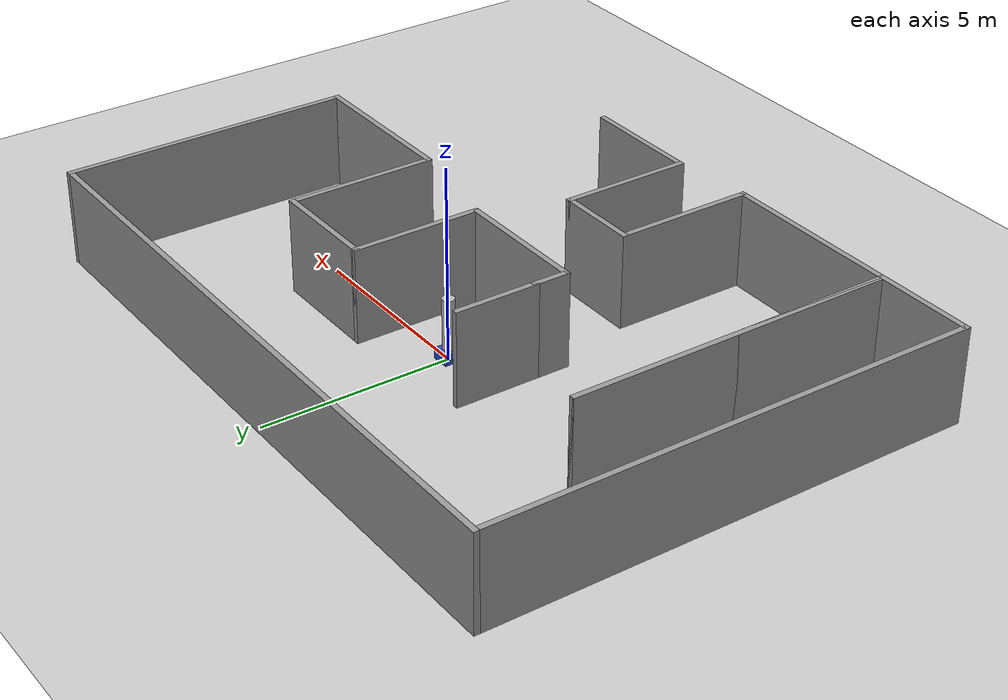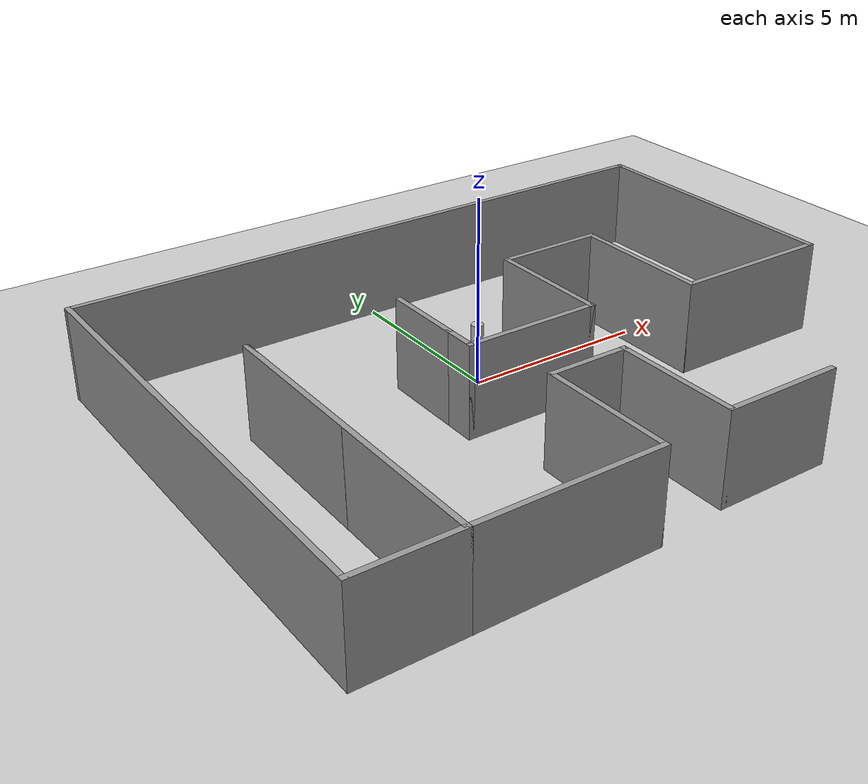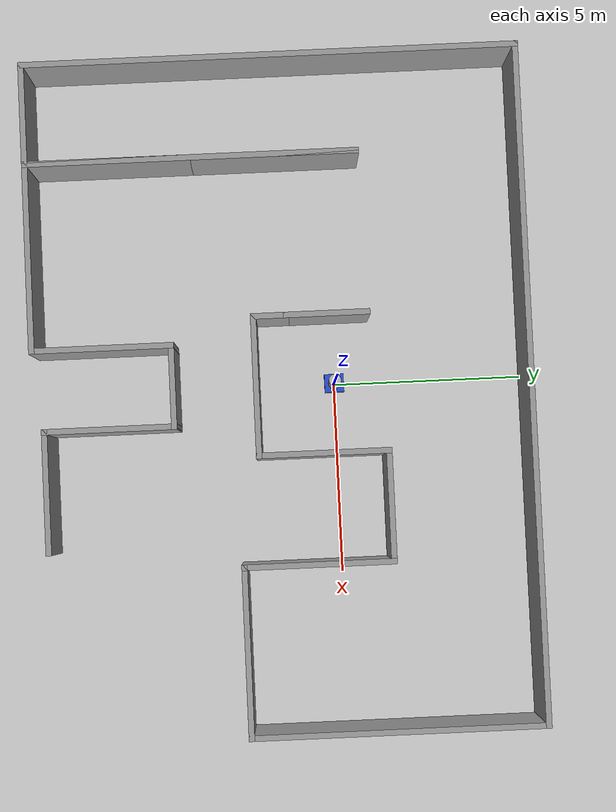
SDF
<sdf version="1.7">
 <world name="default">
  <light name="sun" type="directional">
   <pose>0 0 10 0 -0 0</pose>
   <diffuse>0.8 0.8 0.8 1</diffuse>
   <specular>0.2 0.2 0.2 1</specular>
   <attenuation>
    <range>1000</range>
    <constant>0.9</constant>
    <linear>0.01</linear>
    <quadratic>0.001</quadratic>
   </attenuation>
   <direction>-0.5 0.1 -0.9</direction>
   <spot><inner_angle>0</inner_angle><outer_angle>0</outer_angle><falloff>0</falloff></spot>
  </light>
  <model name="ground_plane">
   <static>1</static>
   <link name="link">
    <collision name="collision">
     <geometry><plane><normal>0 0 1</normal><size>100 100</size></plane></geometry>
     <surface><friction><ode><mu>100</mu><mu2>50</mu2></ode></friction></surface>
    </collision>
    <visual name="visual">
     <cast_shadows>0</cast_shadows>
     <geometry><plane><normal>0 0 1</normal><size>100 100</size></plane></geometry>
     <material>
      <script><uri>file://media/materials/scripts/gazebo.material</uri><name>Gazebo/Grey</name></script>
     </material>
    </visual>
   </link>
  </model>
  <gravity>0 0 -9.8</gravity>
  <magnetic_field>6e-06 2.3e-05 -4.2e-05</magnetic_field>
  <atmosphere type="adiabatic"/>
  <physics type="ode">
   <max_step_size>0.001</max_step_size>
   <real_time_factor>1</real_time_factor>
   <real_time_update_rate>1000</real_time_update_rate>
  </physics>
  <scene><ambient>0.4 0.4 0.4 1</ambient><background>0.7 0.7 0.7 1</background><shadows>1</shadows></scene>
  <audio><device>default</device></audio>
  <spherical_coordinates>
   <surface_model>EARTH_WGS84</surface_model>
   <latitude_deg>0</latitude_deg>
   <longitude_deg>0</longitude_deg>
   <elevation>0</elevation>
   <heading_deg>0</heading_deg>
  </spherical_coordinates>
  <model name="sid_robot">
   <link name="base_footprint">
    <inertial>
     <pose>-0.0204 0 0.289333 0 -0 0</pose>
     <mass>7.5</mass>
     <inertia>
      <ixx>0.957416</ixx>
      <ixy>0</ixy>
      <ixz>-0.036618</ixz>
      <iyy>1.02829</iyy>
      <iyz>0</iyz>
      <izz>0.203433</izz>
     </inertia>
    </inertial>
    <collision name="base_footprint_fixed_joint_lump__base_link_collision">
     <pose>0 0 0.187 0 -0 0</pose>
     <geometry><box><size>0.487 0.513 0.275</size></box></geometry>
    </collision>
    <collision name="base_footprint_fixed_joint_lump__body_link_collision_1">
     <pose>0 0 1.02 0 -0 0</pose>
     <geometry><cylinder><length>0.04</length><radius>0.05</radius></cylinder></geometry>
    </collision>
    <collision name="base_footprint_fixed_joint_lump__left_caster_collision_2">
     <pose>-0.153 0.166 0.05 0 -0 0</pose>
     <geometry><sphere><radius>0.05</radius></sphere></geometry>
     <surface><friction><ode><mu>0.05</mu><mu2>0.05</mu2></ode></friction></surface>
    </collision>
    <collision name="base_footprint_fixed_joint_lump__lidar_link_collision_3">
     <pose>0 0 0.33 0 -0 0</pose>
     <geometry><cylinder><length>0.04</length><radius>0.05</radius></cylinder></geometry>
    </collision>
    <collision name="base_footprint_fixed_joint_lump__right_caster_collision_4">
     <pose>-0.153 -0.166 0.05 0 -0 0</pose>
     <geometry><sphere><radius>0.05</radius></sphere></geometry>
     <surface><friction><ode><mu>0.05</mu><mu2>0.05</mu2></ode></friction></surface>
    </collision>
    <visual name="base_footprint_fixed_joint_lump__base_link_visual">
     <pose>0 0 0.187 0 -0 0</pose>
     <geometry><box><size>0.487 0.513 0.275</size></box></geometry>
     <material>
      <script><name>Gazebo/Blue</name><uri>file://media/materials/scripts/gazebo.material</uri></script>
     </material>
    </visual>
    <visual name="base_footprint_fixed_joint_lump__body_link_visual_1">
     <pose>0 0 1.02 0 -0 0</pose>
     <geometry><cylinder><length>1.33</length><radius>0.16</radius></cylinder></geometry>
    </visual>
    <visual name="base_footprint_fixed_joint_lump__left_caster_visual_2">
     <pose>-0.153 0.166 0.05 0 -0 0</pose>
     <geometry><sphere><radius>0.05</radius></sphere></geometry>
     <material>
      <script><name>Gazebo/Grey</name><uri>file://media/materials/scripts/gazebo.material</uri></script>
     </material>
    </visual>
    <visual name="base_footprint_fixed_joint_lump__lidar_link_visual_3">
     <pose>0 0 0.33 0 -0 0</pose>
     <geometry><cylinder><length>0.04</length><radius>0.05</radius></cylinder></geometry>
     <material>
      <script><name>Gazebo/Red</name><uri>file://media/materials/scripts/gazebo.material</uri></script>
     </material>
    </visual>
    <visual name="base_footprint_fixed_joint_lump__right_caster_visual_4">
     <pose>-0.153 -0.166 0.05 0 -0 0</pose>
     <geometry><sphere><radius>0.05</radius></sphere></geometry>
     <material>
      <script><name>Gazebo/Grey</name><uri>file://media/materials/scripts/gazebo.material</uri></script>
     </material>
    </visual>
    <sensor name="lidar" type="ray">
     <always_on>1</always_on>
     <visualize>1</visualize>
     <update_rate>5</update_rate>
     <ray>
      <scan>
       <horizontal>
        <samples>360</samples>
        <resolution>1</resolution>
        <min_angle>0</min_angle>
        <max_angle>6.28</max_angle>
       </horizontal>
       <vertical><samples>1</samples><min_angle>0</min_angle><max_angle>0</max_angle></vertical>
      </scan>
      <range><min>0.12</min><max>3.5</max><resolution>0.1</resolution></range>
      <noise><type>gaussian</type><mean>0</mean><stddev>0.01</stddev></noise>
     </ray>
     <plugin name="scan" filename="libgazebo_ros_ray_sensor.so">
      <ros><remapping>~/out:=scan</remapping></ros>
      <output_type>sensor_msgs/LaserScan</output_type>
      <frame_name>lidar_link</frame_name>
     </plugin>
     <pose>0 0 0.33 0 -0 0</pose>
    </sensor>
   </link>
   <joint name="left_wheel_joint" type="revolute">
    <pose relative_to="base_footprint">0.153 0.177 0.05 0 -0 0</pose>
    <parent>base_footprint</parent>
    <child>left_wheel_link</child>
    <axis>
     <xyz>0 1 0</xyz>
     <limit><lower>-1e+16</lower><upper>1e+16</upper></limit>
     <dynamics><spring_reference>0</spring_reference><spring_stiffness>0</spring_stiffness></dynamics>
    </axis>
   </joint>
   <link name="left_wheel_link">
    <pose relative_to="left_wheel_joint">0 0 0 0 -0 0</pose>
    <inertial>
     <pose>0 0 0 1.5708 -0 0</pose>
     <mass>1</mass>
     <inertia>
      <ixx>0.000758333</ixx>
      <ixy>0</ixy>
      <ixz>0</ixz>
      <iyy>0.000758333</iyy>
      <iyz>0</iyz>
      <izz>0.00125</izz>
     </inertia>
    </inertial>
    <collision name="left_wheel_link_collision">
     <pose>0 0 0 1.5708 -0 0</pose>
     <geometry><cylinder><length>0.04</length><radius>0.05</radius></cylinder></geometry>
    </collision>
    <visual name="left_wheel_link_visual">
     <pose>0 0 0 1.5708 -0 0</pose>
     <geometry><cylinder><length>0.04</length><radius>0.05</radius></cylinder></geometry>
     <material>
      <script><name>Gazebo/Grey</name><uri>file://media/materials/scripts/gazebo.material</uri></script>
     </material>
    </visual>
   </link>
   <joint name="right_wheel_joint" type="revolute">
    <pose relative_to="base_footprint">0.153 -0.177 0.05 0 -0 0</pose>
    <parent>base_footprint</parent>
    <child>right_wheel_link</child>
    <axis>
     <xyz>0 1 0</xyz>
     <limit><lower>-1e+16</lower><upper>1e+16</upper></limit>
     <dynamics><spring_reference>0</spring_reference><spring_stiffness>0</spring_stiffness></dynamics>
    </axis>
   </joint>
   <link name="right_wheel_link">
    <pose relative_to="right_wheel_joint">0 0 0 0 -0 0</pose>
    <inertial>
     <pose>0 0 0 1.5708 -0 0</pose>
     <mass>1</mass>
     <inertia>
      <ixx>0.000758333</ixx>
      <ixy>0</ixy>
      <ixz>0</ixz>
      <iyy>0.000758333</iyy>
      <iyz>0</iyz>
      <izz>0.00125</izz>
     </inertia>
    </inertial>
    <collision name="right_wheel_link_collision">
     <pose>0 0 0 1.5708 -0 0</pose>
     <geometry><cylinder><length>0.04</length><radius>0.05</radius></cylinder></geometry>
    </collision>
    <visual name="right_wheel_link_visual">
     <pose>0 0 0 1.5708 -0 0</pose>
     <geometry><cylinder><length>0.04</length><radius>0.05</radius></cylinder></geometry>
     <material>
      <script><name>Gazebo/Grey</name><uri>file://media/materials/scripts/gazebo.material</uri></script>
     </material>
    </visual>
   </link>
   <static>0</static>
   <plugin name="gazebo_ros_diff_drive" filename="libgazebo_ros_diff_drive.so">
    <update_rate>50</update_rate>
    <left_joint>left_wheel_joint</left_joint>
    <right_joint>right_wheel_joint</right_joint>
    <wheel_separation>0.354</wheel_separation>
    <wheel_diameter>0.1</wheel_diameter>
    <max_wheel_torque>5.0</max_wheel_torque>
    <max_wheel_acceleration>4.0</max_wheel_acceleration>
    <command_topic>cmd_vel</command_topic>
    <publish_odom>1</publish_odom>
    <publish_odom_tf>1</publish_odom_tf>
    <publish_wheel_tf>1</publish_wheel_tf>
    <odometry_topic>odom</odometry_topic>
    <odometry_frame>odom</odometry_frame>
    <robot_base_frame>base_footprint</robot_base_frame>
   </plugin>
   <pose>-0.031997 0.003987 0 0 -0 0.015415</pose>
  </model>
  <model name="Building">
   <pose>0.270511 -1.38355 0 0 -0 0</pose>
   <link name="Wall_12">
    <collision name="Wall_12_Collision">
     <geometry><box><size>2.25 0.15 2.5</size></box></geometry>
     <pose>0 0 1.25 0 -0 0</pose>
    </collision>
    <visual name="Wall_12_Visual">
     <pose>0 0 1.25 0 -0 0</pose>
     <geometry><box><size>2.25 0.15 2.5</size></box></geometry>
     <material>
      <script><uri>file://media/materials/scripts/gazebo.material</uri><name>Gazebo/Grey</name></script>
      <ambient>1 1 1 1</ambient>
     </material>
     <meta><layer>0</layer></meta>
    </visual>
    <pose>-2 1.225 0 0 -0 -1.5708</pose>
   </link>
   <link name="Wall_13">
    <collision name="Wall_13_Collision">
     <geometry><box><size>1 0.15 2.5</size></box></geometry>
     <pose>0 0 1.25 0 -0 0</pose>
    </collision>
    <visual name="Wall_13_Visual">
     <pose>0 0 1.25 0 -0 0</pose>
     <geometry><box><size>1 0.15 2.5</size></box></geometry>
     <material>
      <script><uri>file://media/materials/scripts/gazebo.material</uri><name>Gazebo/Grey</name></script>
      <ambient>1 1 1 1</ambient>
     </material>
     <meta><layer>0</layer></meta>
    </visual>
    <pose>-2 -0.25 0 0 -0 -1.5708</pose>
   </link>
   <link name="Wall_14">
    <collision name="Wall_14_Collision">
     <geometry><box><size>3.75 0.15 2.5</size></box></geometry>
     <pose>0 0 1.25 0 -0 0</pose>
    </collision>
    <visual name="Wall_14_Visual">
     <pose>0 0 1.25 0 -0 0</pose>
     <geometry><box><size>3.75 0.15 2.5</size></box></geometry>
     <material>
      <script><uri>file://media/materials/scripts/gazebo.material</uri><name>Gazebo/Grey</name></script>
      <ambient>1 1 1 1</ambient>
     </material>
     <meta><layer>0</layer></meta>
    </visual>
    <pose>-0.2 -0.675 0 0 -0 0</pose>
   </link>
   <link name="Wall_15">
    <collision name="Wall_15_Collision">
     <geometry><box><size>3.5 0.15 2.5</size></box></geometry>
     <pose>0 0 1.25 0 -0 0</pose>
    </collision>
    <visual name="Wall_15_Visual">
     <pose>0 0 1.25 0 -0 0</pose>
     <geometry><box><size>3.5 0.15 2.5</size></box></geometry>
     <material>
      <script><uri>file://media/materials/scripts/gazebo.material</uri><name>Gazebo/Grey</name></script>
      <ambient>1 1 1 1</ambient>
     </material>
     <meta><layer>0</layer></meta>
    </visual>
    <pose>1.6 1 0 0 -0 1.5708</pose>
   </link>
   <link name="Wall_16">
    <collision name="Wall_16_Collision">
     <geometry><box><size>3 0.15 2.5</size></box></geometry>
     <pose>0 0 1.25 0 -0 0</pose>
    </collision>
    <visual name="Wall_16_Visual">
     <pose>0 0 1.25 0 -0 0</pose>
     <geometry><box><size>3 0.15 2.5</size></box></geometry>
     <material>
      <script><uri>file://media/materials/scripts/gazebo.material</uri><name>Gazebo/Grey</name></script>
      <ambient>1 1 1 1</ambient>
     </material>
     <meta><layer>0</layer></meta>
    </visual>
    <pose>3.025 2.675 0 0 -0 0</pose>
   </link>
   <link name="Wall_17">
    <collision name="Wall_17_Collision">
     <geometry><box><size>4 0.15 2.5</size></box></geometry>
     <pose>0 0 1.25 0 -0 0</pose>
    </collision>
    <visual name="Wall_17_Visual">
     <pose>0 0 1.25 0 -0 0</pose>
     <geometry><box><size>4 0.15 2.5</size></box></geometry>
     <material>
      <script><uri>file://media/materials/scripts/gazebo.material</uri><name>Gazebo/Grey</name></script>
      <ambient>1 1 1 1</ambient>
     </material>
     <meta><layer>0</layer></meta>
    </visual>
    <pose>4.45 0.75 0 0 -0 -1.5708</pose>
   </link>
   <link name="Wall_18">
    <collision name="Wall_18_Collision">
     <geometry><box><size>4.5 0.15 2.5</size></box></geometry>
     <pose>0 0 1.25 0 -0 0</pose>
    </collision>
    <visual name="Wall_18_Visual">
     <pose>0 0 1.25 0 -0 0</pose>
     <geometry><box><size>4.5 0.15 2.5</size></box></geometry>
     <material>
      <script><uri>file://media/materials/scripts/gazebo.material</uri><name>Gazebo/Grey</name></script>
      <ambient>1 1 1 1</ambient>
     </material>
     <meta><layer>0</layer></meta>
    </visual>
    <pose>6.625 -1.175 0 0 -0 0</pose>
   </link>
   <link name="Wall_19">
    <collision name="Wall_19_Collision">
     <geometry><box><size>7.75 0.15 2.5</size></box></geometry>
     <pose>0 0 1.25 0 -0 0</pose>
    </collision>
    <visual name="Wall_19_Visual">
     <pose>0 0 1.25 0 -0 0</pose>
     <geometry><box><size>7.75 0.15 2.5</size></box></geometry>
     <material>
      <script><uri>file://media/materials/scripts/gazebo.material</uri><name>Gazebo/Grey</name></script>
      <ambient>1 1 1 1</ambient>
     </material>
     <meta><layer>0</layer></meta>
    </visual>
    <pose>8.8 2.625 0 0 -0 1.5708</pose>
   </link>
   <link name="Wall_20">
    <collision name="Wall_20_Collision">
     <geometry><box><size>17.75 0.15 2.5</size></box></geometry>
     <pose>0 0 1.25 0 -0 0</pose>
    </collision>
    <visual name="Wall_20_Visual">
     <pose>0 0 1.25 0 -0 0</pose>
     <geometry><box><size>17.75 0.15 2.5</size></box></geometry>
     <material>
      <script><uri>file://media/materials/scripts/gazebo.material</uri><name>Gazebo/Grey</name></script>
      <ambient>1 1 1 1</ambient>
     </material>
     <meta><layer>0</layer></meta>
    </visual>
    <pose>-0 6.425 0 0 -0 3.14159</pose>
   </link>
   <link name="Wall_21">
    <collision name="Wall_21_Collision">
     <geometry><box><size>13 0.15 2.5</size></box></geometry>
     <pose>0 0 1.25 0 -0 0</pose>
    </collision>
    <visual name="Wall_21_Visual">
     <pose>0 0 1.25 0 -0 0</pose>
     <geometry><box><size>13 0.15 2.5</size></box></geometry>
     <material>
      <script><uri>file://media/materials/scripts/gazebo.material</uri><name>Gazebo/Grey</name></script>
      <ambient>1 1 1 1</ambient>
     </material>
     <meta><layer>0</layer></meta>
    </visual>
    <pose>-8.8 0 0 0 -0 -1.5708</pose>
   </link>
   <link name="Wall_22">
    <collision name="Wall_22_Collision">
     <geometry><box><size>2.75 0.15 2.5</size></box></geometry>
     <pose>0 0 1.25 0 -0 0</pose>
    </collision>
    <visual name="Wall_22_Visual">
     <pose>0 0 1.25 0 -0 0</pose>
     <geometry><box><size>2.75 0.15 2.5</size></box></geometry>
     <material>
      <script><uri>file://media/materials/scripts/gazebo.material</uri><name>Gazebo/Grey</name></script>
      <ambient>1 1 1 1</ambient>
     </material>
     <meta><layer>0</layer></meta>
    </visual>
    <pose>-7.5 -6.425 0 0 -0 0</pose>
   </link>
   <link name="Wall_23">
    <collision name="Wall_23_Collision">
     <geometry><box><size>8.75 0.15 2.5</size></box></geometry>
     <pose>0 0 1.25 0 -0 0</pose>
    </collision>
    <visual name="Wall_23_Visual">
     <pose>0 0 1.25 0 -0 0</pose>
     <geometry><box><size>8.75 0.15 2.5</size></box></geometry>
     <material>
      <script><uri>file://media/materials/scripts/gazebo.material</uri><name>Gazebo/Grey</name></script>
      <ambient>1 1 1 1</ambient>
     </material>
     <meta><layer>0</layer></meta>
    </visual>
    <pose>-6.2 -2.125 0 0 -0 1.5708</pose>
   </link>
   <link name="Wall_24">
    <collision name="Wall_24_Collision">
     <geometry><box><size>8.75 0.15 2.5</size></box></geometry>
     <pose>0 0 1.25 0 -0 0</pose>
    </collision>
    <visual name="Wall_24_Visual">
     <pose>0 0 1.25 0 -0 0</pose>
     <geometry><box><size>8.75 0.15 2.5</size></box></geometry>
     <material>
      <script><uri>file://media/materials/scripts/gazebo.material</uri><name>Gazebo/Grey</name></script>
      <ambient>1 1 1 1</ambient>
     </material>
     <meta><layer>0</layer></meta>
    </visual>
    <pose>-6.2 -2.125 0 0 -0 -1.5708</pose>
   </link>
   <link name="Wall_25">
    <collision name="Wall_25_Collision">
     <geometry><box><size>5 0.15 2.5</size></box></geometry>
     <pose>0 0 1.25 0 -0 0</pose>
    </collision>
    <visual name="Wall_25_Visual">
     <pose>0 0 1.25 0 -0 0</pose>
     <geometry><box><size>5 0.15 2.5</size></box></geometry>
     <material>
      <script><uri>file://media/materials/scripts/gazebo.material</uri><name>Gazebo/Grey</name></script>
      <ambient>1 1 1 1</ambient>
     </material>
     <meta><layer>0</layer></meta>
    </visual>
    <pose>-3.775 -6.425 0 0 -0 0</pose>
   </link>
   <link name="Wall_26">
    <collision name="Wall_26_Collision">
     <geometry><box><size>3.75 0.15 2.5</size></box></geometry>
     <pose>0 0 1.25 0 -0 0</pose>
    </collision>
    <visual name="Wall_26_Visual">
     <pose>0 0 1.25 0 -0 0</pose>
     <geometry><box><size>3.75 0.15 2.5</size></box></geometry>
     <material>
      <script><uri>file://media/materials/scripts/gazebo.material</uri><name>Gazebo/Grey</name></script>
      <ambient>1 1 1 1</ambient>
     </material>
     <meta><layer>0</layer></meta>
    </visual>
    <pose>-1.35 -4.625 0 0 -0 1.5708</pose>
   </link>
   <link name="Wall_27">
    <collision name="Wall_27_Collision">
     <geometry><box><size>2.25 0.15 2.5</size></box></geometry>
     <pose>0 0 1.25 0 -0 0</pose>
    </collision>
    <visual name="Wall_27_Visual">
     <pose>0 0 1.25 0 -0 0</pose>
     <geometry><box><size>2.25 0.15 2.5</size></box></geometry>
     <material>
      <script><uri>file://media/materials/scripts/gazebo.material</uri><name>Gazebo/Grey</name></script>
      <ambient>1 1 1 1</ambient>
     </material>
     <meta><layer>0</layer></meta>
    </visual>
    <pose>-0.3 -2.825 0 0 -0 0</pose>
   </link>
   <link name="Wall_28">
    <collision name="Wall_28_Collision">
     <geometry><box><size>3.5 0.15 2.5</size></box></geometry>
     <pose>0 0 1.25 0 -0 0</pose>
    </collision>
    <visual name="Wall_28_Visual">
     <pose>0 0 1.25 0 -0 0</pose>
     <geometry><box><size>3.5 0.15 2.5</size></box></geometry>
     <material>
      <script><uri>file://media/materials/scripts/gazebo.material</uri><name>Gazebo/Grey</name></script>
      <ambient>1 1 1 1</ambient>
     </material>
     <meta><layer>0</layer></meta>
    </visual>
    <pose>0.75 -4.5 0 0 -0 -1.5708</pose>
   </link>
   <link name="Wall_29">
    <collision name="Wall_29_Collision">
     <geometry><box><size>3.25 0.15 2.5</size></box></geometry>
     <pose>0 0 1.25 0 -0 0</pose>
    </collision>
    <visual name="Wall_29_Visual">
     <pose>0 0 1.25 0 -0 0</pose>
     <geometry><box><size>3.25 0.15 2.5</size></box></geometry>
     <material>
      <script><uri>file://media/materials/scripts/gazebo.material</uri><name>Gazebo/Grey</name></script>
      <ambient>1 1 1 1</ambient>
     </material>
     <meta><layer>0</layer></meta>
    </visual>
    <pose>2.3 -6.175 0 0 -0 0</pose>
   </link>
   <static>1</static>
  </model>
 </world>
</sdf>
